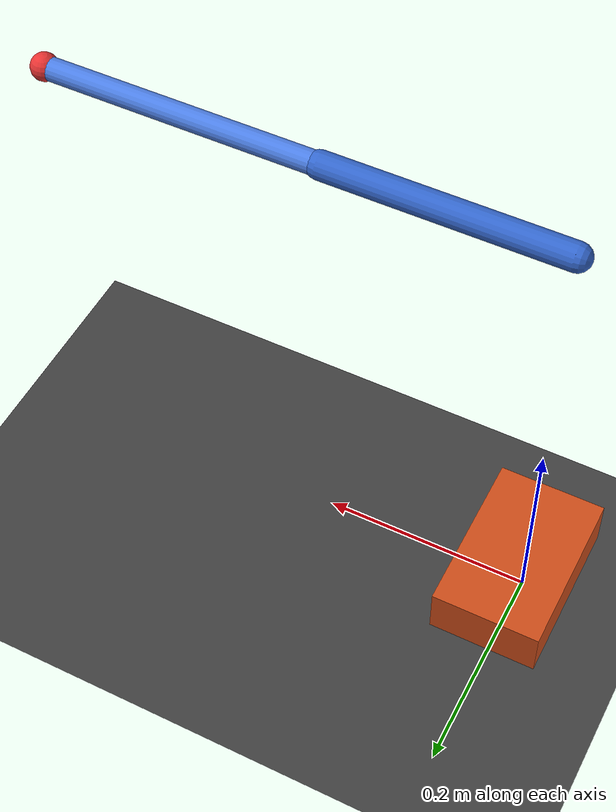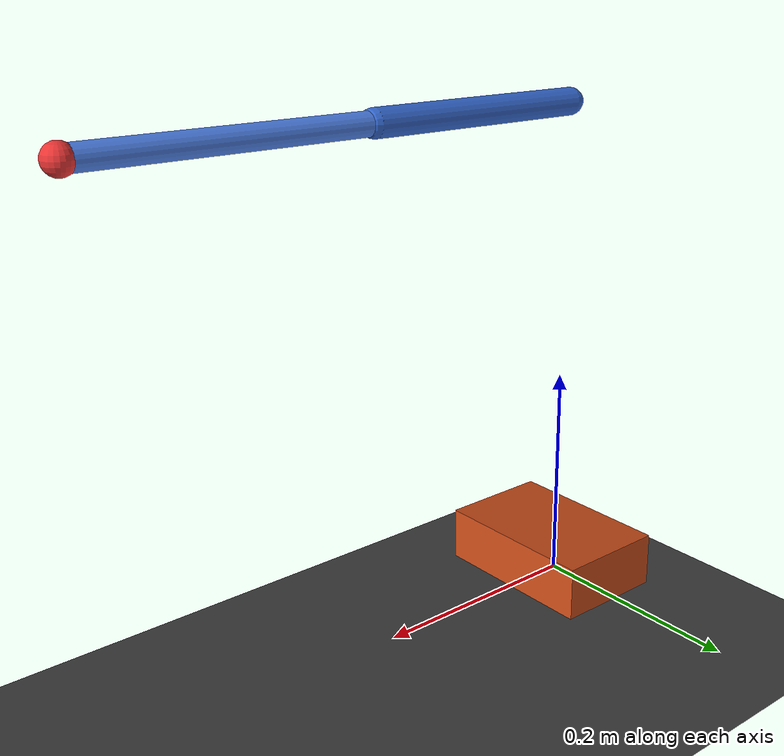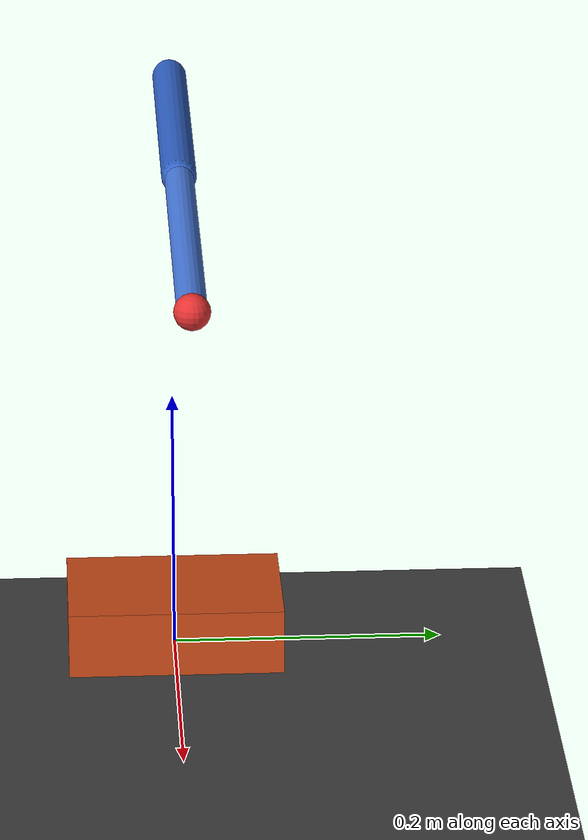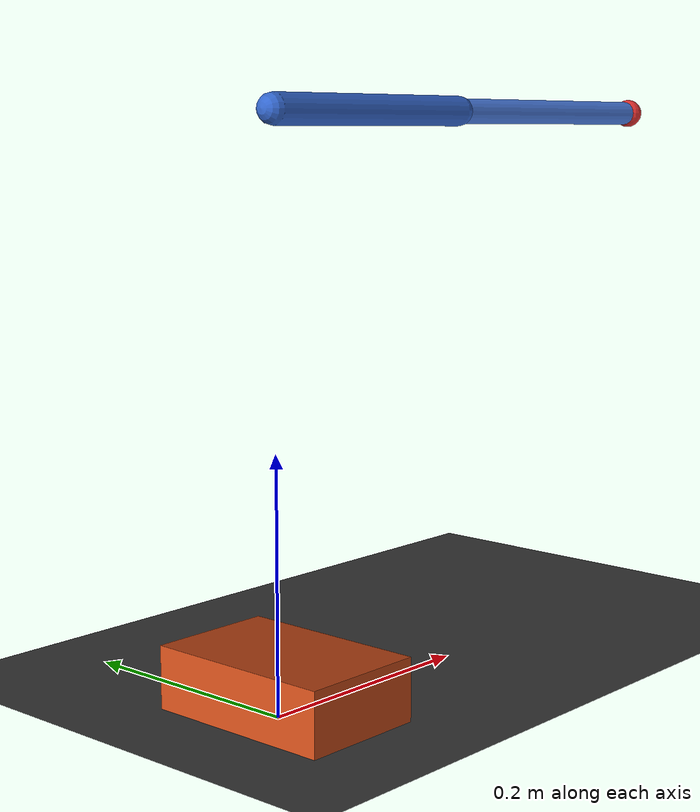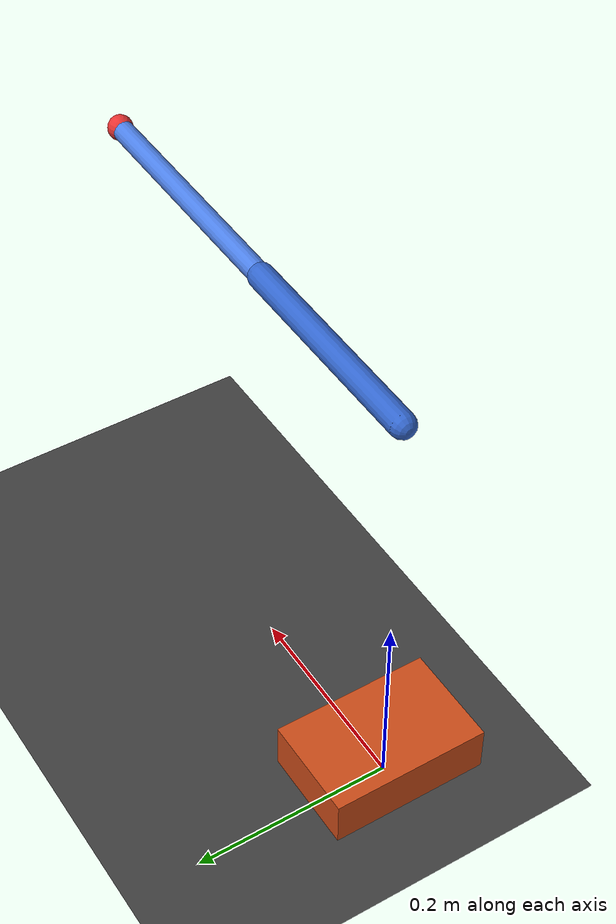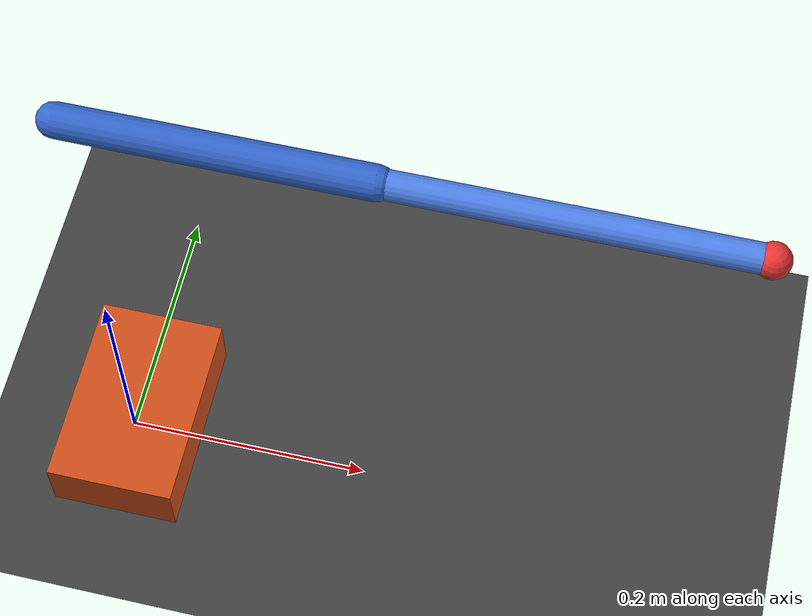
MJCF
<mujoco model="pi7_leg">
  <option timestep="0.002" integrator="implicitfast" gravity="0 0 -9.81"/>

  <visual>
    <global offwidth="1280" offheight="720"/>
  </visual>

  <asset>
    <texture type="skybox" builtin="gradient" rgb1="0.3 0.5 0.7" rgb2="0 0 0" width="512" height="512"/>
    <texture name="grid" type="2d" builtin="checker" rgb1="0.2 0.2 0.2" rgb2="0.3 0.3 0.3" width="300" height="300"/>
    <material name="grid_mat" texture="grid" texrepeat="6 6" reflectance="0.1"/>
  </asset>

  <worldbody>
    <light pos="0 0 2" dir="0 0 -1" diffuse="0.8 0.8 0.8"/>

    <geom name="ground" type="plane" size="1 1 0.05" pos="0 0 0" material="grid_mat"/>

    <geom name="obstacle" type="box" pos="0.007 0 0.025" size="0.052 0.08 0.025" rgba="0.8 0.3 0.1 1"/>

    <!-- quadril fixo no espaco, como na bancada real: so coxa e canela se movem -->
    <body name="thigh" pos="0 0 0.45">
      <joint name="hip" type="hinge" axis="0 1 0" pos="0 0 0" range="0 120" limited="true" damping="1.0"/>
      <geom name="thigh_geom" type="capsule" fromto="0 0 0  0.21 0 0" size="0.012" rgba="0.2 0.4 0.8 1"/>
      <inertial pos="0.105 0 0" mass="0.35" diaginertia="0.000025 0.00129 0.00129"/>

      <body name="shank" pos="0.21 0 0">
        <joint name="knee" type="hinge" axis="0 1 0" pos="0 0 0" range="0 130" limited="true" damping="1.0"/>
        <geom name="shank_geom" type="capsule" fromto="0 0 0  0.247 0 0" size="0.010" rgba="0.3 0.5 0.9 1"/>
        <inertial pos="0.1235 0 0" mass="0.20" diaginertia="0.00001 0.00102 0.00102"/>
        <geom name="foot" type="sphere" pos="0.247 0 0" size="0.012" friction="1.0 0.005 0.0001" rgba="0.9 0.2 0.2 1"/>
      </body>
    </body>
  </worldbody>

  <actuator>
    <motor name="hip_motor" joint="hip" gear="1" ctrlrange="-3 3" ctrllimited="true"/>
    <motor name="knee_motor" joint="knee" gear="1" ctrlrange="-2 2" ctrllimited="true"/>
  </actuator>
</mujoco>
